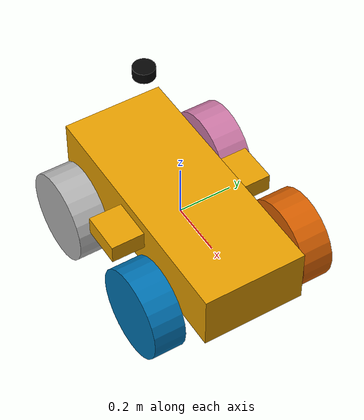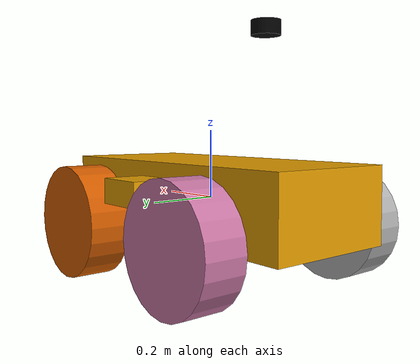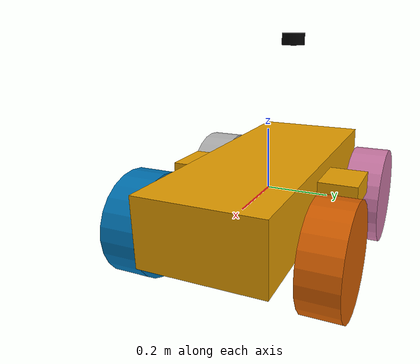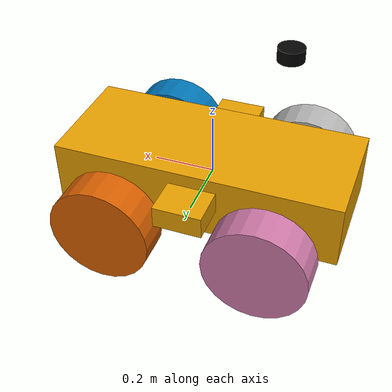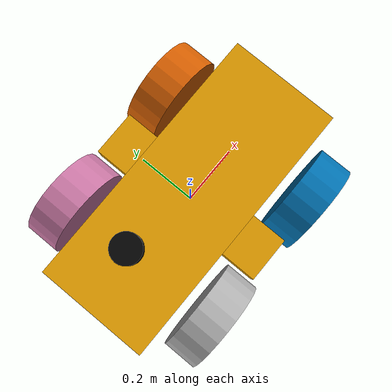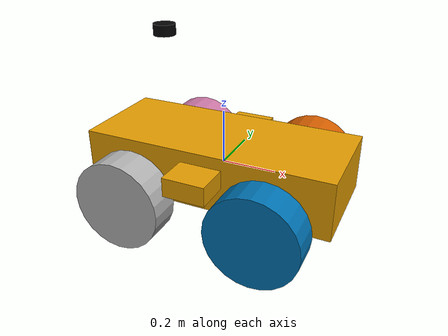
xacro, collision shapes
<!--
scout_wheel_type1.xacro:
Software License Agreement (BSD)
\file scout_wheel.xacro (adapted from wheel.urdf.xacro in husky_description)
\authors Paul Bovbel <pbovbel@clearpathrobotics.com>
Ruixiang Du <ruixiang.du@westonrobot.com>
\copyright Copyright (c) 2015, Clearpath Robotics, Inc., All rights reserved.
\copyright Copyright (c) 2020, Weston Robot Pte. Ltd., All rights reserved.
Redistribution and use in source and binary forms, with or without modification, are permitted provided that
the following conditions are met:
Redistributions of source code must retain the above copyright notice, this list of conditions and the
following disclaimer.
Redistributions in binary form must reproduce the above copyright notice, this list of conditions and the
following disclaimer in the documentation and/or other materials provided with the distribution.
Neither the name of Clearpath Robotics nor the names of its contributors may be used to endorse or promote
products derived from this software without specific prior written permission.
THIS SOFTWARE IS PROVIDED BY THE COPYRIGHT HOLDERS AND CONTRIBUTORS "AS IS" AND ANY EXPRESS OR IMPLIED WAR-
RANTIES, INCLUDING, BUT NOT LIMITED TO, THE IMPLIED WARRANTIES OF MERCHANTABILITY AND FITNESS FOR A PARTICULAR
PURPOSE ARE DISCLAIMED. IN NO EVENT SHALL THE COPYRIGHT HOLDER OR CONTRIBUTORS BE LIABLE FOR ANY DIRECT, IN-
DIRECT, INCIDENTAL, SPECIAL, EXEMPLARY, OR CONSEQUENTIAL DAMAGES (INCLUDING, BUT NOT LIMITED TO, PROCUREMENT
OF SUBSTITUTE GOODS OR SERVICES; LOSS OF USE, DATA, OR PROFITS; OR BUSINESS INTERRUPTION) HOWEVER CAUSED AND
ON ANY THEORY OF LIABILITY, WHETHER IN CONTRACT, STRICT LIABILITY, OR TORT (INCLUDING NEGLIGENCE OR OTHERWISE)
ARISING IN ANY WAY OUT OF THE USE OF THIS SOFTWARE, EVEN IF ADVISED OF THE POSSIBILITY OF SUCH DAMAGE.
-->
<?xml version="1.0"?>

<robot name="scout_v2"
    xmlns:xacro="http://ros.org/wiki/xacro">

    <xacro:arg name="robot_namespace" default="/" />

    <xacro:include filename="$(find scout_description)/urdf/scout_v2/scout_wheel_type1.xacro" />
    <xacro:include filename="$(find scout_description)/urdf/scout_v2/scout_wheel_type2.xacro" />

    <!-- Variables -->
    <xacro:property name="M_PI" value="3.14159"/>

    <!-- Vehicle Geometries -->
    <xacro:property name="base_x_size" value="0.9250000" />
    <xacro:property name="base_y_size" value="0.380000" />
    <xacro:property name="base_z_size" value="0.210000" />

    <xacro:property name="wheelbase" value="0.498" />
    <xacro:property name="track" value="0.58306" />
    <xacro:property name="wheel_vertical_offset" value="-0.0702" />

    <xacro:property name="wheel_length" value="1.1653e-01" />
    <xacro:property name="wheel_radius" value="1.6459e-01" />

    <!-- Base link -->
    <link name="base_link">
        <visual>
            <origin xyz="0 0 0" rpy="0 0 0" />
            <geometry>
                <mesh filename="package://scout_description/meshes/scout_v2/base_link.dae" />
            </geometry>
        </visual>
        <collision>
            <origin xyz="0 0 0.008" rpy="0 0 0" />
            <geometry>
                <box size="${base_x_size} ${base_y_size} ${base_z_size}"/>
            </geometry>
        </collision>
        <collision>
            <origin xyz="0 0 ${base_z_size/6}" rpy="0 0 0" />
            <geometry>
                <box size="${base_x_size/6} ${base_y_size*1.65} ${base_z_size/3}"/>
            </geometry>
        </collision>
    </link>

    <link name="base_footprint"/>

    <joint name="base_footprint_joint" type="fixed">
        <origin xyz="0 0 ${wheel_vertical_offset - wheel_radius}" rpy="0 0 0" />
        <parent link="base_link" />
        <child link="base_footprint" />
    </joint>

    <link name="inertial_link">
        <inertial>
            <mass value="40" />
            <origin xyz="0.0 0.0 0.0" />
            <inertia ixx="2.288641" ixy="0" ixz="0" iyy="5.103976" iyz="0" izz="3.431465" />
        </inertial>
    </link>

    <joint name="inertial_joint" type="fixed">
        <origin xyz="0 0 0" rpy="0 0 0" />
        <parent link="base_link" />
        <child link="inertial_link" />
    </joint>
    <link name="laser">
        <inertial>
            <mass value="0.19" />
            <origin xyz="0 0 0" />
            <inertia ixx="0.00012" ixy="0" ixz="0" iyy="0.00012" iyz="0" izz="0.00018" />
        </inertial>
        <visual>
            <origin xyz="0 0 0.02" rpy="0 0 0" />
            <geometry>
                <cylinder length="0.04" radius="0.04" />
            </geometry>
            <material name="rplidar_black">
                <color rgba="0.02 0.02 0.02 1.0" />
            </material>
        </visual>
        <visual>
            <origin xyz="0 0 0.045" rpy="0 0 0" />
            <geometry>
                <cylinder length="0.01" radius="0.032" />
            </geometry>
            <material name="rplidar_cap">
                <color rgba="0.10 0.10 0.10 1.0" />
            </material>
        </visual>
        <collision>
            <origin xyz="0 0 0.02" rpy="0 0 0" />
            <geometry>
                <cylinder length="0.04" radius="0.04" />
            </geometry>
        </collision>
    </link>

    <joint name="rplidar_joint" type="fixed">
        <parent link="base_link" />
        <child link="laser" />
        <origin xyz="-0.23 0.0 0.45" rpy="0 0 3.1416"/>
    </joint>

    <!-- Scout wheel macros -->
    <!-- wheel labeled from 0 to 3, conter-clockwise, starting from front right wheel -->
    <!-- motor 1 and 2 (left side) are mechanically installed in a reversed direction -->
    <xacro:scout_wheel_type1 wheel_prefix="front_right">
        <origin xyz="${wheelbase/2} ${-track/2} ${wheel_vertical_offset}" rpy="3.14 0 0" />
    </xacro:scout_wheel_type1>
    <xacro:scout_wheel_type2 wheel_prefix="front_left">
        <origin xyz="${wheelbase/2} ${track/2} ${wheel_vertical_offset}" rpy="0 0 0" />
    </xacro:scout_wheel_type2>
    <xacro:scout_wheel_type1 wheel_prefix="rear_left">
        <origin xyz="${-wheelbase/2} ${track/2} ${wheel_vertical_offset}" rpy="0 0 0" />
    </xacro:scout_wheel_type1>
    <xacro:scout_wheel_type2 wheel_prefix="rear_right">
        <origin xyz="${-wheelbase/2} ${-track/2} ${wheel_vertical_offset}" rpy="3.14 0 0" />
    </xacro:scout_wheel_type2>

</robot>

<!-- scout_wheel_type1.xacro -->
<robot xmlns:xacro="http://ros.org/wiki/xacro" name="scout_wheel">

    <xacro:macro name="scout_wheel_type1" params="wheel_prefix *joint_pose">
        <link name="${wheel_prefix}_wheel_link">
            <inertial>
                <mass value="3" />
                <origin xyz="0 0 0" />
                <inertia ixx="0.7171" ixy="0" ixz="0" iyy="0.1361" iyz="0" izz="0.7171" />
            </inertial>
            <visual>
                <origin xyz="0 0 0" rpy="0 0 0" />
                <geometry>
                    <mesh filename="package://scout_description/meshes/scout_v2/wheel_type1.dae" />
                </geometry>
            </visual>
            <collision>
                <origin xyz="0 0 0" rpy="${M_PI/2} 0 0" />
                <geometry>
                    <cylinder length="${wheel_length}" radius="${wheel_radius}" />
                </geometry>
            </collision>
        </link>

        <joint name="${wheel_prefix}_wheel" type="continuous">
            <parent link="base_link"/>
            <child link="${wheel_prefix}_wheel_link"/>
            <xacro:insert_block name="joint_pose"/>
            <axis xyz="0 ${-1 if 'right' in wheel_prefix else 1} 0" rpy="0 0 0" />
        </joint>
    </xacro:macro>

</robot>

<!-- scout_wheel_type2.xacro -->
<robot xmlns:xacro="http://ros.org/wiki/xacro" name="scout_wheel">

    <xacro:macro name="scout_wheel_type2" params="wheel_prefix *joint_pose">
        <link name="${wheel_prefix}_wheel_link">
            <inertial>
                <mass value="3" />
                <origin xyz="0 0 0" />
                <inertia ixx="0.7171" ixy="0" ixz="0" iyy="0.1361" iyz="0" izz="0.7171" />
            </inertial>
            <visual>
                <origin xyz="0 0 0" rpy="0 0 0" />
                <geometry>
                    <mesh filename="package://scout_description/meshes/scout_v2/wheel_type2.dae" />
                </geometry>
            </visual>
            <collision>
                <origin xyz="0 0 0" rpy="${M_PI/2} 0 0" />
                <geometry>
                    <cylinder length="${wheel_length}" radius="${wheel_radius}" />
                </geometry>
            </collision>
        </link>

        <joint name="${wheel_prefix}_wheel" type="continuous">
            <parent link="base_link"/>
            <child link="${wheel_prefix}_wheel_link"/>
            <xacro:insert_block name="joint_pose"/>
            <axis xyz="0 ${-1 if 'right' in wheel_prefix else 1} 0" rpy="0 0 0" />
        </joint>
    </xacro:macro>

</robot>
